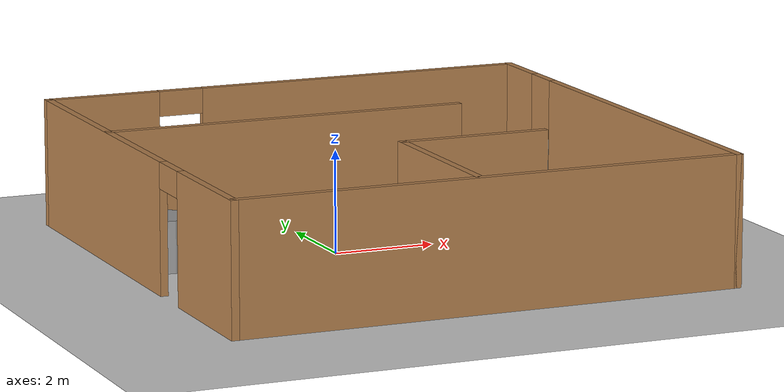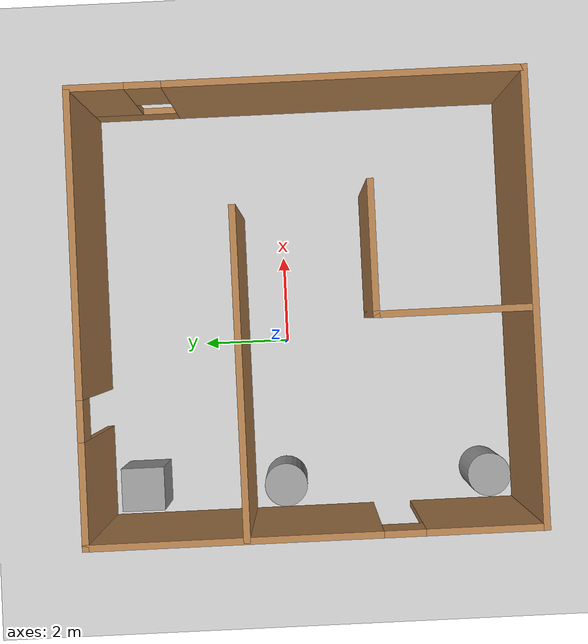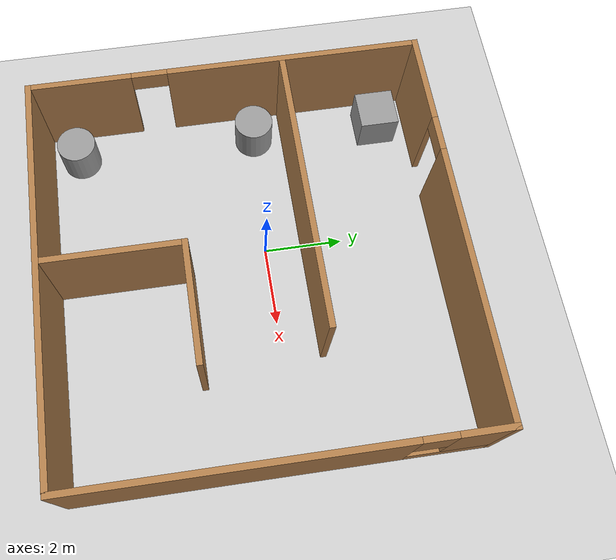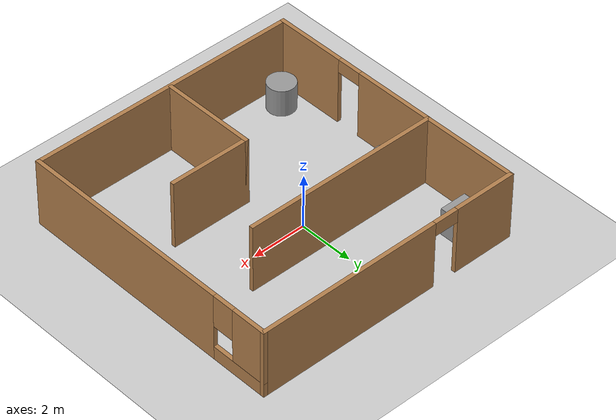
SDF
<sdf version="1.6">
 <world name="default">
  <light name="sun" type="directional">
   <pose>0 0 10 0 -0 0</pose>
   <diffuse>0.8 0.8 0.8 1</diffuse>
   <specular>0.1 0.1 0.1 1</specular>
   <attenuation>
    <range>1000</range>
    <constant>0.9</constant>
    <linear>0.01</linear>
    <quadratic>0.001</quadratic>
   </attenuation>
   <direction>-0.5 0.5 -1</direction>
  </light>
  <model name="ground_plane">
   <static>1</static>
   <link name="link">
    <collision name="collision">
     <geometry><plane><normal>0 0 1</normal><size>100 100</size></plane></geometry>
     <surface><friction><ode><mu>100</mu><mu2>50</mu2></ode></friction></surface>
    </collision>
    <visual name="visual">
     <cast_shadows>0</cast_shadows>
     <geometry><plane><normal>0 0 1</normal><size>100 100</size></plane></geometry>
     <material>
      <script><uri>file://media/materials/scripts/gazebo.material</uri><name>Gazebo/Grey</name></script>
     </material>
    </visual>
   </link>
  </model>
  <gravity>0 0 -9.8</gravity>
  <magnetic_field>6e-06 2.3e-05 -4.2e-05</magnetic_field>
  <atmosphere type="adiabatic"/>
  <physics name="default_physics" default="0" type="ode">
   <max_step_size>0.001</max_step_size>
   <real_time_factor>1</real_time_factor>
   <real_time_update_rate>1000</real_time_update_rate>
  </physics>
  <scene><ambient>0.4 0.4 0.4 1</ambient><background>0.7 0.7 0.7 1</background><shadows>1</shadows></scene>
  <spherical_coordinates>
   <surface_model>EARTH_WGS84</surface_model>
   <latitude_deg>0</latitude_deg>
   <longitude_deg>0</longitude_deg>
   <elevation>0</elevation>
   <heading_deg>0</heading_deg>
  </spherical_coordinates>
  <model name="new_building1">
   <link name="Wall_0">
    <pose>-4.925 0 0 0 0 -1.5708</pose>
    <visual name="Wall_0_Visual_0">
     <pose>-1.77669 0 1.25 0 -0 0</pose>
     <geometry><box><size>6.44661 0.15 2.5</size></box></geometry>
     <material>
      <script><uri>file://media/materials/scripts/gazebo.material</uri><name>Gazebo/Wood</name></script>
      <ambient>1 1 1 1</ambient>
      <diffuse>1 1 1 1</diffuse>
      <specular>0.2 0.2 0.2 1</specular>
      <emissive>0 0 0 1</emissive>
     </material>
    </visual>
    <visual name="Wall_0_Visual_1">
     <pose>3.67331 0 1.25 0 -0 0</pose>
     <geometry><box><size>2.65339 0.15 2.5</size></box></geometry>
     <material>
      <script><uri>file://media/materials/scripts/gazebo.material</uri><name>Gazebo/Wood</name></script>
      <ambient>1 1 1 1</ambient>
      <diffuse>1 1 1 1</diffuse>
      <specular>0.2 0.2 0.2 1</specular>
      <emissive>0 0 0 1</emissive>
     </material>
    </visual>
    <visual name="Wall_0_Visual_2">
     <pose>1.89661 0 2.25 0 -0 0</pose>
     <geometry><box><size>0.9 0.15 0.5</size></box></geometry>
     <material>
      <script><uri>file://media/materials/scripts/gazebo.material</uri><name>Gazebo/Wood</name></script>
      <ambient>1 1 1 1</ambient>
      <diffuse>1 1 1 1</diffuse>
      <specular>0.2 0.2 0.2 1</specular>
      <emissive>0 0 0 1</emissive>
     </material>
    </visual>
    <collision name="Wall_0_Collision_0">
     <pose>-1.77669 0 1.25 0 -0 0</pose>
     <geometry><box><size>6.44661 0.15 2.5</size></box></geometry>
     <surface>
      <friction>
       <ode><mu>1</mu><mu2>1</mu2><fdir1>0 0 0</fdir1><slip1>0</slip1><slip2>0</slip2></ode>
       <torsional>
        <coefficient>1</coefficient>
        <patch_radius>0</patch_radius>
        <surface_radius>0</surface_radius>
        <use_patch_radius>1</use_patch_radius>
        <ode><slip>0</slip></ode>
       </torsional>
      </friction>
      <bounce><restitution_coefficient>0</restitution_coefficient><threshold>1e+06</threshold></bounce>
      <contact>
       <collide_without_contact>0</collide_without_contact>
       <collide_without_contact_bitmask>1</collide_without_contact_bitmask>
       <collide_bitmask>1</collide_bitmask>
       <ode>
        <soft_cfm>0</soft_cfm>
        <soft_erp>0.2</soft_erp>
        <kp>1e+13</kp>
        <kd>1</kd>
        <max_vel>0.01</max_vel>
        <min_depth>0</min_depth>
       </ode>
       <bullet>
        <split_impulse>1</split_impulse>
        <split_impulse_penetration_threshold>-0.01</split_impulse_penetration_threshold>
        <soft_cfm>0</soft_cfm>
        <soft_erp>0.2</soft_erp>
        <kp>1e+13</kp>
        <kd>1</kd>
       </bullet>
      </contact>
     </surface>
    </collision>
    <collision name="Wall_0_Collision_1">
     <pose>3.67331 0 1.25 0 -0 0</pose>
     <geometry><box><size>2.65339 0.15 2.5</size></box></geometry>
     <surface>
      <friction>
       <ode><mu>1</mu><mu2>1</mu2><fdir1>0 0 0</fdir1><slip1>0</slip1><slip2>0</slip2></ode>
       <torsional>
        <coefficient>1</coefficient>
        <patch_radius>0</patch_radius>
        <surface_radius>0</surface_radius>
        <use_patch_radius>1</use_patch_radius>
        <ode><slip>0</slip></ode>
       </torsional>
      </friction>
      <bounce><restitution_coefficient>0</restitution_coefficient><threshold>1e+06</threshold></bounce>
      <contact>
       <collide_without_contact>0</collide_without_contact>
       <collide_without_contact_bitmask>1</collide_without_contact_bitmask>
       <collide_bitmask>1</collide_bitmask>
       <ode>
        <soft_cfm>0</soft_cfm>
        <soft_erp>0.2</soft_erp>
        <kp>1e+13</kp>
        <kd>1</kd>
        <max_vel>0.01</max_vel>
        <min_depth>0</min_depth>
       </ode>
       <bullet>
        <split_impulse>1</split_impulse>
        <split_impulse_penetration_threshold>-0.01</split_impulse_penetration_threshold>
        <soft_cfm>0</soft_cfm>
        <soft_erp>0.2</soft_erp>
        <kp>1e+13</kp>
        <kd>1</kd>
       </bullet>
      </contact>
     </surface>
    </collision>
    <collision name="Wall_0_Collision_2">
     <pose>1.89661 0 2.25 0 -0 0</pose>
     <geometry><box><size>0.9 0.15 0.5</size></box></geometry>
     <surface>
      <friction>
       <ode><mu>1</mu><mu2>1</mu2><fdir1>0 0 0</fdir1><slip1>0</slip1><slip2>0</slip2></ode>
       <torsional>
        <coefficient>1</coefficient>
        <patch_radius>0</patch_radius>
        <surface_radius>0</surface_radius>
        <use_patch_radius>1</use_patch_radius>
        <ode><slip>0</slip></ode>
       </torsional>
      </friction>
      <bounce><restitution_coefficient>0</restitution_coefficient><threshold>1e+06</threshold></bounce>
      <contact>
       <collide_without_contact>0</collide_without_contact>
       <collide_without_contact_bitmask>1</collide_without_contact_bitmask>
       <collide_bitmask>1</collide_bitmask>
       <ode>
        <soft_cfm>0</soft_cfm>
        <soft_erp>0.2</soft_erp>
        <kp>1e+13</kp>
        <kd>1</kd>
        <max_vel>0.01</max_vel>
        <min_depth>0</min_depth>
       </ode>
       <bullet>
        <split_impulse>1</split_impulse>
        <split_impulse_penetration_threshold>-0.01</split_impulse_penetration_threshold>
        <soft_cfm>0</soft_cfm>
        <soft_erp>0.2</soft_erp>
        <kp>1e+13</kp>
        <kd>1</kd>
       </bullet>
      </contact>
     </surface>
    </collision>
   </link>
   <link name="Wall_1">
    <pose>0 -4.925 0 0 -0 0</pose>
    <visual name="Wall_1_Visual">
     <pose>0 0 1.25 0 -0 0</pose>
     <geometry><box><size>10 0.15 2.5</size></box></geometry>
     <material>
      <script><uri>file://media/materials/scripts/gazebo.material</uri><name>Gazebo/Wood</name></script>
      <ambient>1 1 1 1</ambient>
      <diffuse>1 1 1 1</diffuse>
      <specular>0.2 0.2 0.2 1</specular>
      <emissive>0 0 0 1</emissive>
     </material>
    </visual>
    <collision name="Wall_1_Collision">
     <pose>0 0 1.25 0 -0 0</pose>
     <geometry><box><size>10 0.15 2.5</size></box></geometry>
     <surface>
      <friction>
       <ode><mu>1</mu><mu2>1</mu2><fdir1>0 0 0</fdir1><slip1>0</slip1><slip2>0</slip2></ode>
       <torsional>
        <coefficient>1</coefficient>
        <patch_radius>0</patch_radius>
        <surface_radius>0</surface_radius>
        <use_patch_radius>1</use_patch_radius>
        <ode><slip>0</slip></ode>
       </torsional>
      </friction>
      <bounce><restitution_coefficient>0</restitution_coefficient><threshold>1e+06</threshold></bounce>
      <contact>
       <collide_without_contact>0</collide_without_contact>
       <collide_without_contact_bitmask>1</collide_without_contact_bitmask>
       <collide_bitmask>1</collide_bitmask>
       <ode>
        <soft_cfm>0</soft_cfm>
        <soft_erp>0.2</soft_erp>
        <kp>1e+13</kp>
        <kd>1</kd>
        <max_vel>0.01</max_vel>
        <min_depth>0</min_depth>
       </ode>
       <bullet>
        <split_impulse>1</split_impulse>
        <split_impulse_penetration_threshold>-0.01</split_impulse_penetration_threshold>
        <soft_cfm>0</soft_cfm>
        <soft_erp>0.2</soft_erp>
        <kp>1e+13</kp>
        <kd>1</kd>
       </bullet>
      </contact>
     </surface>
    </collision>
   </link>
   <link name="Wall_2">
    <pose>4.925 0 0 0 -0 1.5708</pose>
    <visual name="Wall_2_Visual_0">
     <pose>-1.05768 0 1.25 0 -0 0</pose>
     <geometry><box><size>7.88464 0.15 2.5</size></box></geometry>
     <material>
      <script><uri>file://media/materials/scripts/gazebo.material</uri><name>Gazebo/Wood</name></script>
      <ambient>1 1 1 1</ambient>
      <diffuse>1 1 1 1</diffuse>
      <specular>0.2 0.2 0.2 1</specular>
      <emissive>0 0 0 1</emissive>
     </material>
    </visual>
    <visual name="Wall_2_Visual_1">
     <pose>3.94232 0 0.25 0 -0 0</pose>
     <geometry><box><size>2.11536 0.15 0.5</size></box></geometry>
     <material>
      <script><uri>file://media/materials/scripts/gazebo.material</uri><name>Gazebo/Wood</name></script>
      <ambient>1 1 1 1</ambient>
      <diffuse>1 1 1 1</diffuse>
      <specular>0.2 0.2 0.2 1</specular>
      <emissive>0 0 0 1</emissive>
     </material>
    </visual>
    <visual name="Wall_2_Visual_2">
     <pose>4.34232 0 1.5 0 -0 0</pose>
     <geometry><box><size>1.31536 0.15 2</size></box></geometry>
     <material>
      <script><uri>file://media/materials/scripts/gazebo.material</uri><name>Gazebo/Wood</name></script>
      <ambient>1 1 1 1</ambient>
      <diffuse>1 1 1 1</diffuse>
      <specular>0.2 0.2 0.2 1</specular>
      <emissive>0 0 0 1</emissive>
     </material>
    </visual>
    <visual name="Wall_2_Visual_3">
     <pose>3.28464 0 1.9 0 -0 0</pose>
     <geometry><box><size>0.8 0.15 1.2</size></box></geometry>
     <material>
      <script><uri>file://media/materials/scripts/gazebo.material</uri><name>Gazebo/Wood</name></script>
      <ambient>1 1 1 1</ambient>
      <diffuse>1 1 1 1</diffuse>
      <specular>0.2 0.2 0.2 1</specular>
      <emissive>0 0 0 1</emissive>
     </material>
    </visual>
    <collision name="Wall_2_Collision_0">
     <pose>-1.05768 0 1.25 0 -0 0</pose>
     <geometry><box><size>7.88464 0.15 2.5</size></box></geometry>
     <surface>
      <friction>
       <ode><mu>1</mu><mu2>1</mu2><fdir1>0 0 0</fdir1><slip1>0</slip1><slip2>0</slip2></ode>
       <torsional>
        <coefficient>1</coefficient>
        <patch_radius>0</patch_radius>
        <surface_radius>0</surface_radius>
        <use_patch_radius>1</use_patch_radius>
        <ode><slip>0</slip></ode>
       </torsional>
      </friction>
      <bounce><restitution_coefficient>0</restitution_coefficient><threshold>1e+06</threshold></bounce>
      <contact>
       <collide_without_contact>0</collide_without_contact>
       <collide_without_contact_bitmask>1</collide_without_contact_bitmask>
       <collide_bitmask>1</collide_bitmask>
       <ode>
        <soft_cfm>0</soft_cfm>
        <soft_erp>0.2</soft_erp>
        <kp>1e+13</kp>
        <kd>1</kd>
        <max_vel>0.01</max_vel>
        <min_depth>0</min_depth>
       </ode>
       <bullet>
        <split_impulse>1</split_impulse>
        <split_impulse_penetration_threshold>-0.01</split_impulse_penetration_threshold>
        <soft_cfm>0</soft_cfm>
        <soft_erp>0.2</soft_erp>
        <kp>1e+13</kp>
        <kd>1</kd>
       </bullet>
      </contact>
     </surface>
    </collision>
    <collision name="Wall_2_Collision_1">
     <pose>3.94232 0 0.25 0 -0 0</pose>
     <geometry><box><size>2.11536 0.15 0.5</size></box></geometry>
     <surface>
      <friction>
       <ode><mu>1</mu><mu2>1</mu2><fdir1>0 0 0</fdir1><slip1>0</slip1><slip2>0</slip2></ode>
       <torsional>
        <coefficient>1</coefficient>
        <patch_radius>0</patch_radius>
        <surface_radius>0</surface_radius>
        <use_patch_radius>1</use_patch_radius>
        <ode><slip>0</slip></ode>
       </torsional>
      </friction>
      <bounce><restitution_coefficient>0</restitution_coefficient><threshold>1e+06</threshold></bounce>
      <contact>
       <collide_without_contact>0</collide_without_contact>
       <collide_without_contact_bitmask>1</collide_without_contact_bitmask>
       <collide_bitmask>1</collide_bitmask>
       <ode>
        <soft_cfm>0</soft_cfm>
        <soft_erp>0.2</soft_erp>
        <kp>1e+13</kp>
        <kd>1</kd>
        <max_vel>0.01</max_vel>
        <min_depth>0</min_depth>
       </ode>
       <bullet>
        <split_impulse>1</split_impulse>
        <split_impulse_penetration_threshold>-0.01</split_impulse_penetration_threshold>
        <soft_cfm>0</soft_cfm>
        <soft_erp>0.2</soft_erp>
        <kp>1e+13</kp>
        <kd>1</kd>
       </bullet>
      </contact>
     </surface>
    </collision>
    <collision name="Wall_2_Collision_2">
     <pose>4.34232 0 1.5 0 -0 0</pose>
     <geometry><box><size>1.31536 0.15 2</size></box></geometry>
     <surface>
      <friction>
       <ode><mu>1</mu><mu2>1</mu2><fdir1>0 0 0</fdir1><slip1>0</slip1><slip2>0</slip2></ode>
       <torsional>
        <coefficient>1</coefficient>
        <patch_radius>0</patch_radius>
        <surface_radius>0</surface_radius>
        <use_patch_radius>1</use_patch_radius>
        <ode><slip>0</slip></ode>
       </torsional>
      </friction>
      <bounce><restitution_coefficient>0</restitution_coefficient><threshold>1e+06</threshold></bounce>
      <contact>
       <collide_without_contact>0</collide_without_contact>
       <collide_without_contact_bitmask>1</collide_without_contact_bitmask>
       <collide_bitmask>1</collide_bitmask>
       <ode>
        <soft_cfm>0</soft_cfm>
        <soft_erp>0.2</soft_erp>
        <kp>1e+13</kp>
        <kd>1</kd>
        <max_vel>0.01</max_vel>
        <min_depth>0</min_depth>
       </ode>
       <bullet>
        <split_impulse>1</split_impulse>
        <split_impulse_penetration_threshold>-0.01</split_impulse_penetration_threshold>
        <soft_cfm>0</soft_cfm>
        <soft_erp>0.2</soft_erp>
        <kp>1e+13</kp>
        <kd>1</kd>
       </bullet>
      </contact>
     </surface>
    </collision>
    <collision name="Wall_2_Collision_3">
     <pose>3.28464 0 1.9 0 -0 0</pose>
     <geometry><box><size>0.8 0.15 1.2</size></box></geometry>
     <surface>
      <friction>
       <ode><mu>1</mu><mu2>1</mu2><fdir1>0 0 0</fdir1><slip1>0</slip1><slip2>0</slip2></ode>
       <torsional>
        <coefficient>1</coefficient>
        <patch_radius>0</patch_radius>
        <surface_radius>0</surface_radius>
        <use_patch_radius>1</use_patch_radius>
        <ode><slip>0</slip></ode>
       </torsional>
      </friction>
      <bounce><restitution_coefficient>0</restitution_coefficient><threshold>1e+06</threshold></bounce>
      <contact>
       <collide_without_contact>0</collide_without_contact>
       <collide_without_contact_bitmask>1</collide_without_contact_bitmask>
       <collide_bitmask>1</collide_bitmask>
       <ode>
        <soft_cfm>0</soft_cfm>
        <soft_erp>0.2</soft_erp>
        <kp>1e+13</kp>
        <kd>1</kd>
        <max_vel>0.01</max_vel>
        <min_depth>0</min_depth>
       </ode>
       <bullet>
        <split_impulse>1</split_impulse>
        <split_impulse_penetration_threshold>-0.01</split_impulse_penetration_threshold>
        <soft_cfm>0</soft_cfm>
        <soft_erp>0.2</soft_erp>
        <kp>1e+13</kp>
        <kd>1</kd>
       </bullet>
      </contact>
     </surface>
    </collision>
   </link>
   <link name="Wall_3">
    <pose>0 4.925 0 0 -0 3.14159</pose>
    <visual name="Wall_3_Visual_0">
     <pose>-1.61528 0 1.25 0 -0 0</pose>
     <geometry><box><size>6.76943 0.15 2.5</size></box></geometry>
     <material>
      <script><uri>file://media/materials/scripts/gazebo.material</uri><name>Gazebo/Wood</name></script>
      <ambient>1 1 1 1</ambient>
      <diffuse>1 1 1 1</diffuse>
      <specular>0.2 0.2 0.2 1</specular>
      <emissive>0 0 0 1</emissive>
     </material>
    </visual>
    <visual name="Wall_3_Visual_2">
     <pose>2.21943 0 2.25 0 -0 0</pose>
     <geometry><box><size>0.9 0.15 0.5</size></box></geometry>
     <material>
      <script><uri>file://media/materials/scripts/gazebo.material</uri><name>Gazebo/Wood</name></script>
      <ambient>1 1 1 1</ambient>
      <diffuse>1 1 1 1</diffuse>
      <specular>0.2 0.2 0.2 1</specular>
      <emissive>0 0 0 1</emissive>
     </material>
    </visual>
    <visual name="Wall_3_Visual_1">
     <pose>3.83472 0 1.25 0 -0 0</pose>
     <geometry><box><size>2.33056 0.15 2.5</size></box></geometry>
     <material>
      <script><uri>file://media/materials/scripts/gazebo.material</uri><name>Gazebo/Wood</name></script>
      <ambient>1 1 1 1</ambient>
      <diffuse>1 1 1 1</diffuse>
      <specular>0.2 0.2 0.2 1</specular>
      <emissive>0 0 0 1</emissive>
     </material>
    </visual>
    <collision name="Wall_3_Collision_0">
     <pose>-1.61528 0 1.25 0 -0 0</pose>
     <geometry><box><size>6.76943 0.15 2.5</size></box></geometry>
     <surface>
      <friction>
       <ode><mu>1</mu><mu2>1</mu2><fdir1>0 0 0</fdir1><slip1>0</slip1><slip2>0</slip2></ode>
       <torsional>
        <coefficient>1</coefficient>
        <patch_radius>0</patch_radius>
        <surface_radius>0</surface_radius>
        <use_patch_radius>1</use_patch_radius>
        <ode><slip>0</slip></ode>
       </torsional>
      </friction>
      <bounce><restitution_coefficient>0</restitution_coefficient><threshold>1e+06</threshold></bounce>
      <contact>
       <collide_without_contact>0</collide_without_contact>
       <collide_without_contact_bitmask>1</collide_without_contact_bitmask>
       <collide_bitmask>1</collide_bitmask>
       <ode>
        <soft_cfm>0</soft_cfm>
        <soft_erp>0.2</soft_erp>
        <kp>1e+13</kp>
        <kd>1</kd>
        <max_vel>0.01</max_vel>
        <min_depth>0</min_depth>
       </ode>
       <bullet>
        <split_impulse>1</split_impulse>
        <split_impulse_penetration_threshold>-0.01</split_impulse_penetration_threshold>
        <soft_cfm>0</soft_cfm>
        <soft_erp>0.2</soft_erp>
        <kp>1e+13</kp>
        <kd>1</kd>
       </bullet>
      </contact>
     </surface>
    </collision>
    <collision name="Wall_3_Collision_2">
     <pose>2.21943 0 2.25 0 -0 0</pose>
     <geometry><box><size>0.9 0.15 0.5</size></box></geometry>
     <surface>
      <friction>
       <ode><mu>1</mu><mu2>1</mu2><fdir1>0 0 0</fdir1><slip1>0</slip1><slip2>0</slip2></ode>
       <torsional>
        <coefficient>1</coefficient>
        <patch_radius>0</patch_radius>
        <surface_radius>0</surface_radius>
        <use_patch_radius>1</use_patch_radius>
        <ode><slip>0</slip></ode>
       </torsional>
      </friction>
      <bounce><restitution_coefficient>0</restitution_coefficient><threshold>1e+06</threshold></bounce>
      <contact>
       <collide_without_contact>0</collide_without_contact>
       <collide_without_contact_bitmask>1</collide_without_contact_bitmask>
       <collide_bitmask>1</collide_bitmask>
       <ode>
        <soft_cfm>0</soft_cfm>
        <soft_erp>0.2</soft_erp>
        <kp>1e+13</kp>
        <kd>1</kd>
        <max_vel>0.01</max_vel>
        <min_depth>0</min_depth>
       </ode>
       <bullet>
        <split_impulse>1</split_impulse>
        <split_impulse_penetration_threshold>-0.01</split_impulse_penetration_threshold>
        <soft_cfm>0</soft_cfm>
        <soft_erp>0.2</soft_erp>
        <kp>1e+13</kp>
        <kd>1</kd>
       </bullet>
      </contact>
     </surface>
    </collision>
    <collision name="Wall_3_Collision_1">
     <pose>3.83472 0 1.25 0 -0 0</pose>
     <geometry><box><size>2.33056 0.15 2.5</size></box></geometry>
     <surface>
      <friction>
       <ode><mu>1</mu><mu2>1</mu2><fdir1>0 0 0</fdir1><slip1>0</slip1><slip2>0</slip2></ode>
       <torsional>
        <coefficient>1</coefficient>
        <patch_radius>0</patch_radius>
        <surface_radius>0</surface_radius>
        <use_patch_radius>1</use_patch_radius>
        <ode><slip>0</slip></ode>
       </torsional>
      </friction>
      <bounce><restitution_coefficient>0</restitution_coefficient><threshold>1e+06</threshold></bounce>
      <contact>
       <collide_without_contact>0</collide_without_contact>
       <collide_without_contact_bitmask>1</collide_without_contact_bitmask>
       <collide_bitmask>1</collide_bitmask>
       <ode>
        <soft_cfm>0</soft_cfm>
        <soft_erp>0.2</soft_erp>
        <kp>1e+13</kp>
        <kd>1</kd>
        <max_vel>0.01</max_vel>
        <min_depth>0</min_depth>
       </ode>
       <bullet>
        <split_impulse>1</split_impulse>
        <split_impulse_penetration_threshold>-0.01</split_impulse_penetration_threshold>
        <soft_cfm>0</soft_cfm>
        <soft_erp>0.2</soft_erp>
        <kp>1e+13</kp>
        <kd>1</kd>
       </bullet>
      </contact>
     </surface>
    </collision>
   </link>
   <link name="Wall_6">
    <pose>-1.35259 1.48046 0 0 -0 0</pose>
    <visual name="Wall_6_Visual">
     <pose>0 0 1.25 0 -0 0</pose>
     <geometry><box><size>7.25 0.15 2.5</size></box></geometry>
     <material>
      <script><uri>file://media/materials/scripts/gazebo.material</uri><name>Gazebo/Wood</name></script>
      <ambient>1 1 1 1</ambient>
      <diffuse>1 1 1 1</diffuse>
      <specular>0.2 0.2 0.2 1</specular>
      <emissive>0 0 0 1</emissive>
     </material>
    </visual>
    <collision name="Wall_6_Collision">
     <pose>0 0 1.25 0 -0 0</pose>
     <geometry><box><size>7.25 0.15 2.5</size></box></geometry>
     <surface>
      <friction>
       <ode><mu>1</mu><mu2>1</mu2><fdir1>0 0 0</fdir1><slip1>0</slip1><slip2>0</slip2></ode>
       <torsional>
        <coefficient>1</coefficient>
        <patch_radius>0</patch_radius>
        <surface_radius>0</surface_radius>
        <use_patch_radius>1</use_patch_radius>
        <ode><slip>0</slip></ode>
       </torsional>
      </friction>
      <bounce><restitution_coefficient>0</restitution_coefficient><threshold>1e+06</threshold></bounce>
      <contact>
       <collide_without_contact>0</collide_without_contact>
       <collide_without_contact_bitmask>1</collide_without_contact_bitmask>
       <collide_bitmask>1</collide_bitmask>
       <ode>
        <soft_cfm>0</soft_cfm>
        <soft_erp>0.2</soft_erp>
        <kp>1e+13</kp>
        <kd>1</kd>
        <max_vel>0.01</max_vel>
        <min_depth>0</min_depth>
       </ode>
       <bullet>
        <split_impulse>1</split_impulse>
        <split_impulse_penetration_threshold>-0.01</split_impulse_penetration_threshold>
        <soft_cfm>0</soft_cfm>
        <soft_erp>0.2</soft_erp>
        <kp>1e+13</kp>
        <kd>1</kd>
       </bullet>
      </contact>
     </surface>
    </collision>
   </link>
   <link name="Wall_8">
    <pose>-0.230203 -3.18233 0 0 -0 1.5708</pose>
    <visual name="Wall_8_Visual">
     <pose>0 0 1.25 0 -0 0</pose>
     <geometry><box><size>3.5 0.15 2.5</size></box></geometry>
     <material>
      <script><uri>file://media/materials/scripts/gazebo.material</uri><name>Gazebo/Wood</name></script>
      <ambient>1 1 1 1</ambient>
      <diffuse>1 1 1 1</diffuse>
      <specular>0.2 0.2 0.2 1</specular>
      <emissive>0 0 0 1</emissive>
     </material>
    </visual>
    <collision name="Wall_8_Collision">
     <pose>0 0 1.25 0 -0 0</pose>
     <geometry><box><size>3.5 0.15 2.5</size></box></geometry>
     <surface>
      <friction>
       <ode><mu>1</mu><mu2>1</mu2><fdir1>0 0 0</fdir1><slip1>0</slip1><slip2>0</slip2></ode>
       <torsional>
        <coefficient>1</coefficient>
        <patch_radius>0</patch_radius>
        <surface_radius>0</surface_radius>
        <use_patch_radius>1</use_patch_radius>
        <ode><slip>0</slip></ode>
       </torsional>
      </friction>
      <bounce><restitution_coefficient>0</restitution_coefficient><threshold>1e+06</threshold></bounce>
      <contact>
       <collide_without_contact>0</collide_without_contact>
       <collide_without_contact_bitmask>1</collide_without_contact_bitmask>
       <collide_bitmask>1</collide_bitmask>
       <ode>
        <soft_cfm>0</soft_cfm>
        <soft_erp>0.2</soft_erp>
        <kp>1e+13</kp>
        <kd>1</kd>
        <max_vel>0.01</max_vel>
        <min_depth>0</min_depth>
       </ode>
       <bullet>
        <split_impulse>1</split_impulse>
        <split_impulse_penetration_threshold>-0.01</split_impulse_penetration_threshold>
        <soft_cfm>0</soft_cfm>
        <soft_erp>0.2</soft_erp>
        <kp>1e+13</kp>
        <kd>1</kd>
       </bullet>
      </contact>
     </surface>
    </collision>
   </link>
   <link name="Wall_9">
    <pose>1.1948 -1.50733 0 0 -0 0</pose>
    <visual name="Wall_9_Visual">
     <pose>0 0 1.25 0 -0 0</pose>
     <geometry><box><size>3 0.15 2.5</size></box></geometry>
     <material>
      <script><uri>file://media/materials/scripts/gazebo.material</uri><name>Gazebo/Wood</name></script>
      <ambient>1 1 1 1</ambient>
      <diffuse>1 1 1 1</diffuse>
      <specular>0.2 0.2 0.2 1</specular>
      <emissive>0 0 0 1</emissive>
     </material>
    </visual>
    <collision name="Wall_9_Collision">
     <pose>0 0 1.25 0 -0 0</pose>
     <geometry><box><size>3 0.15 2.5</size></box></geometry>
     <surface>
      <friction>
       <ode><mu>1</mu><mu2>1</mu2><fdir1>0 0 0</fdir1><slip1>0</slip1><slip2>0</slip2></ode>
       <torsional>
        <coefficient>1</coefficient>
        <patch_radius>0</patch_radius>
        <surface_radius>0</surface_radius>
        <use_patch_radius>1</use_patch_radius>
        <ode><slip>0</slip></ode>
       </torsional>
      </friction>
      <bounce><restitution_coefficient>0</restitution_coefficient><threshold>1e+06</threshold></bounce>
      <contact>
       <collide_without_contact>0</collide_without_contact>
       <collide_without_contact_bitmask>1</collide_without_contact_bitmask>
       <collide_bitmask>1</collide_bitmask>
       <ode>
        <soft_cfm>0</soft_cfm>
        <soft_erp>0.2</soft_erp>
        <kp>1e+13</kp>
        <kd>1</kd>
        <max_vel>0.01</max_vel>
        <min_depth>0</min_depth>
       </ode>
       <bullet>
        <split_impulse>1</split_impulse>
        <split_impulse_penetration_threshold>-0.01</split_impulse_penetration_threshold>
        <soft_cfm>0</soft_cfm>
        <soft_erp>0.2</soft_erp>
        <kp>1e+13</kp>
        <kd>1</kd>
       </bullet>
      </contact>
     </surface>
    </collision>
   </link>
   <static>1</static>
   <pose>0.75729 -0.479856 0 0 -0 0</pose>
  </model>
  <model name="unit_cylinder_0">
   <pose>-3.34727 0.164017 0.499997 3e-06 4e-06 -0</pose>
   <link name="link">
    <inertial>
     <mass>1</mass>
     <inertia><ixx>0.145833</ixx><ixy>0</ixy><ixz>0</ixz><iyy>0.145833</iyy><iyz>0</iyz><izz>0.125</izz></inertia>
    </inertial>
    <collision name="collision">
     <geometry><cylinder><radius>0.5</radius><length>1</length></cylinder></geometry>
    </collision>
    <visual name="visual">
     <geometry><cylinder><radius>0.5</radius><length>1</length></cylinder></geometry>
     <material>
      <script><name>Gazebo/Grey</name><uri>file://media/materials/scripts/gazebo.material</uri></script>
     </material>
    </visual>
   </link>
  </model>
  <model name="unit_cylinder_1">
   <pose>-3.32708 -4.57258 0.499993 -3e-06 -4e-06 -0</pose>
   <link name="link">
    <inertial>
     <mass>1</mass>
     <inertia><ixx>0.145833</ixx><ixy>0</ixy><ixz>0</ixz><iyy>0.145833</iyy><iyz>0</iyz><izz>0.125</izz></inertia>
    </inertial>
    <collision name="collision">
     <geometry><cylinder><radius>0.5</radius><length>1</length></cylinder></geometry>
    </collision>
    <visual name="visual">
     <geometry><cylinder><radius>0.5</radius><length>1</length></cylinder></geometry>
     <material>
      <script><name>Gazebo/Grey</name><uri>file://media/materials/scripts/gazebo.material</uri></script>
     </material>
    </visual>
   </link>
  </model>
  <model name="unit_box_0">
   <pose>-3.29538 3.50266 0.5 0 -0 0</pose>
   <link name="link">
    <inertial>
     <mass>1</mass>
     <inertia>
      <ixx>0.166667</ixx>
      <ixy>0</ixy>
      <ixz>0</ixz>
      <iyy>0.166667</iyy>
      <iyz>0</iyz>
      <izz>0.166667</izz>
     </inertia>
    </inertial>
    <collision name="collision"><geometry><box><size>1 1 1</size></box></geometry></collision>
    <visual name="visual">
     <geometry><box><size>1 1 1</size></box></geometry>
     <material>
      <script><name>Gazebo/Grey</name><uri>file://media/materials/scripts/gazebo.material</uri></script>
     </material>
    </visual>
   </link>
  </model>
 </world>
</sdf>
